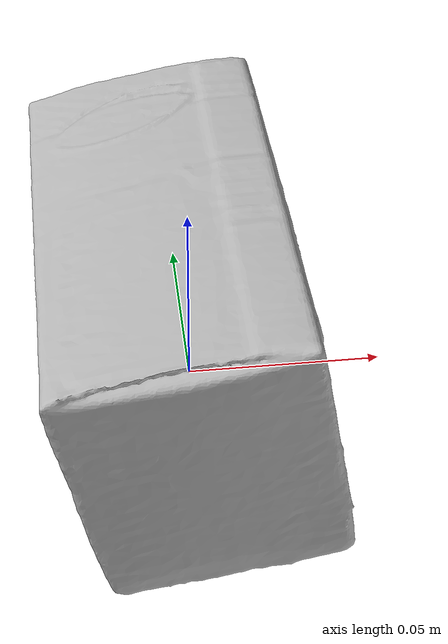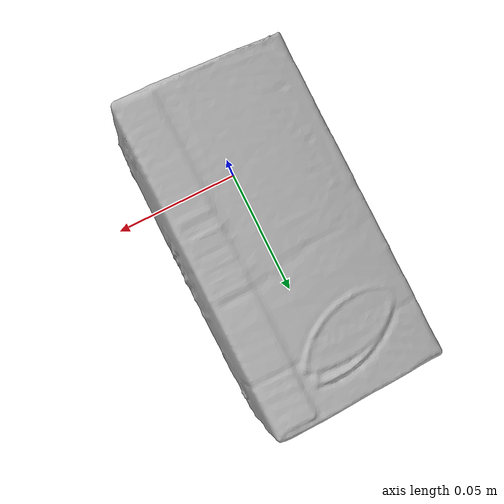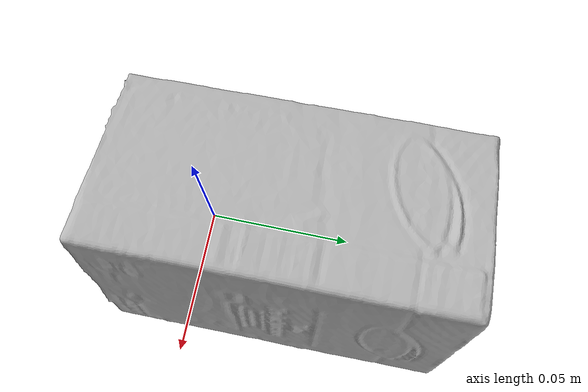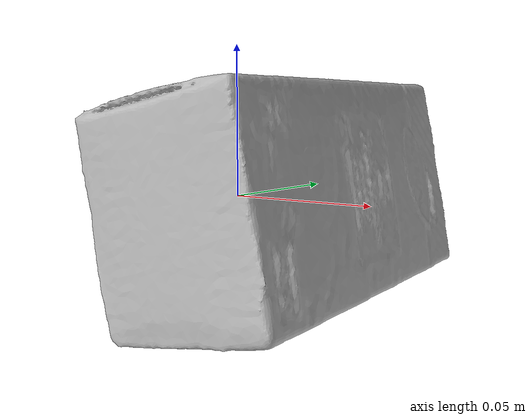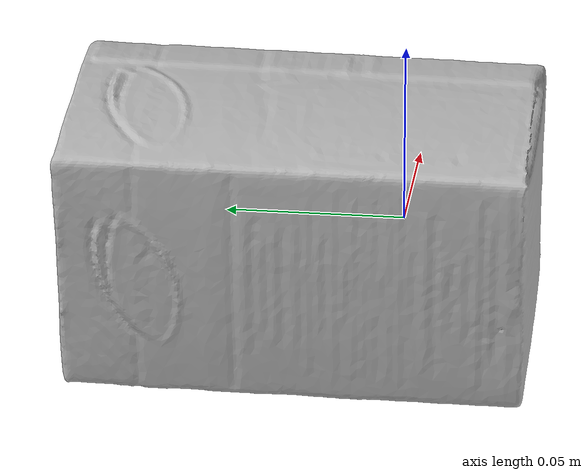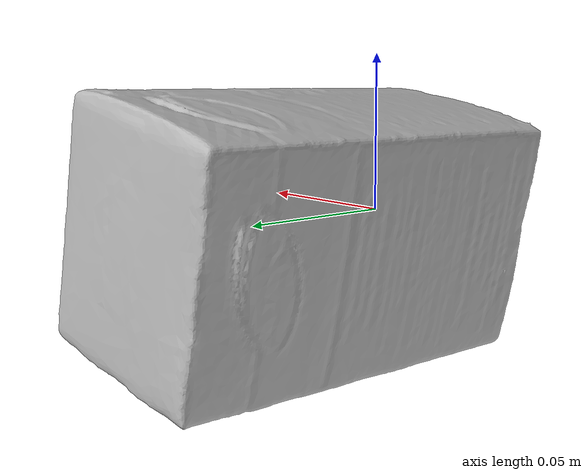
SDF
<?xml version='1.0'?>
<sdf version="1.4">
  <model name="OrgFruitTea">
    <static>false</static>
    <link name="link">
      <inertial>
        <pose>0.0008269305080028529 0.0284621888636734 -0.0027116939378927403 1.5487484956016866 0.2001343464546781 -3.1290916290497086</pose>
        <mass>0.06789257211613645</mass>
        <inertia>
          <ixx>0.00012817929047418027</ixx>
          <ixy>1.0633760034168228e-20</ixy>
          <ixz>2.195403066676218e-21</ixz>
          <iyy>0.00012107169526155293</iyy>
          <iyz>-5.0781527993061034e-21</iyz>
          <izz>5.848764504650722e-05</izz>
        </inertia>
      </inertial>
      <collision name="collision">
        <geometry>
          <mesh>
            <!-- Use a downsampled mesh for collisions -->
            <uri>model:///OrgFruitTea/OrgFruitTea_250_collision.obj</uri>
	        </mesh>
        </geometry>
        <surface>
      </surface>
      </collision>
      <visual name="visual">
        <geometry>
          <mesh>
            <uri>model:///OrgFruitTea/OrgFruitTea_25k_tex.obj</uri>
	        </mesh>
        </geometry>
        <material>
          <script>
            <uri>model:///OrgFruitTea/OrgFruitTea.material</uri>
            <name>OrgFruitTea</name>
          </script>
        </material>
      </visual>
    </link>
  </model>
</sdf>
